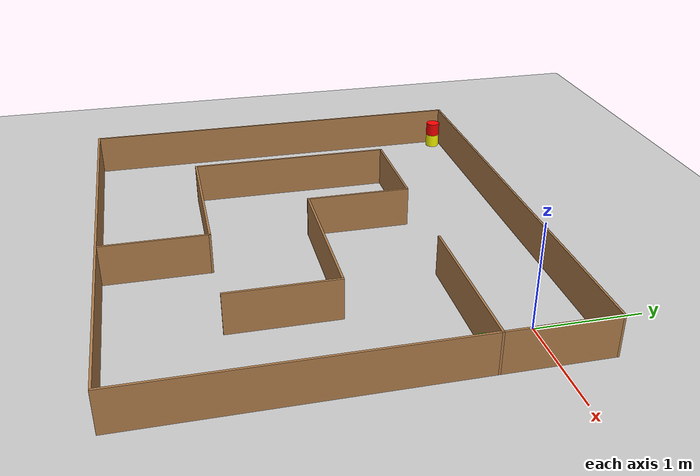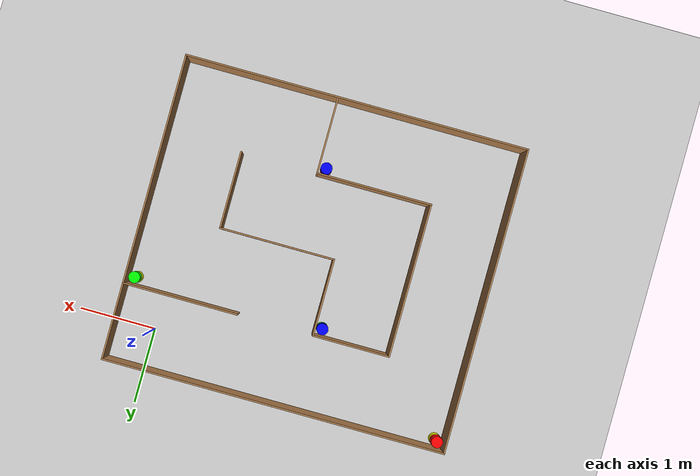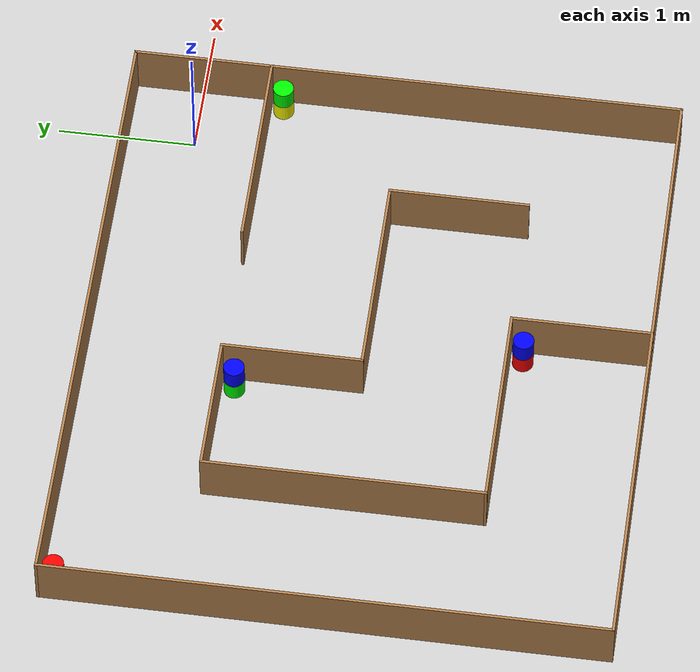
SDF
<?xml version="1.0"?>
<sdf version="1.6">
  <world name="default">

    <include>
      <uri>model://ground_plane</uri>
    </include>

    <include>
      <uri>model://sun</uri>
    </include>

    <scene>
      <shadows>false</shadows>
    </scene>

    <gui fullscreen='0'>
      <camera name='user_camera'>
        <view_controller>orbit</view_controller>
        <projection_type>perspective</projection_type>
      </camera>
    </gui>

    <physics type="ode">
      <real_time_update_rate>1000.0</real_time_update_rate>
      <max_step_size>0.001</max_step_size>
      <real_time_factor>1</real_time_factor>
      <ode>
        <solver>
          <type>quick</type>
          <iters>150</iters>
          <precon_iters>0</precon_iters>
          <sor>1.400000</sor>
          <use_dynamic_moi_rescaling>1</use_dynamic_moi_rescaling>
        </solver>
        <constraints>
          <cfm>0.00001</cfm>
          <erp>0.2</erp>
          <contact_max_correcting_vel>2000.000000</contact_max_correcting_vel>
          <contact_surface_layer>0.01000</contact_surface_layer>
        </constraints>
      </ode>
    </physics>

    <model name="maze_24">
      <static>1</static>
      <include>
        <uri>model://maze_24c</uri>
      </include>
    </model>

    <!-- Beacons -->
    <include>
      <uri>model://beacon_GB</uri>
        <pose>-2.1 -0.6 0 0 0 0</pose>
    </include>

    <include>
      <uri>model://beacon_YR</uri>
        <pose>-3.9 0.4 0 0 0 0</pose>
    </include>

    <include>
      <uri>model://beacon_YG</uri>
        <pose>0.4 -0.6 0 0 0 0</pose>
    </include>

    <include>
      <uri>model://beacon_RB</uri>
        <pose>-1.6 -2.6 0 0 0 0</pose>
    </include>

  </world>
</sdf>

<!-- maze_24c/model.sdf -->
<sdf version='1.7'>
  <model name='maze_24c'>
    <pose>-1.75 -1.5 0 0 -0 0</pose>
    <link name='Wall_0'>
      <collision name='Wall_0_Collision'>
        <geometry>
          <box>
            <size>4.52 0.02 0.4</size>
          </box>
        </geometry>
        <pose>0 0 0.2 0 -0 0</pose>
      </collision>
      <visual name='Wall_0_Visual'>
        <pose>0 0 0.2 0 -0 0</pose>
        <geometry>
          <box>
            <size>4.52 0.02 0.4</size>
          </box>
        </geometry>
        <material>
          <script>
            <uri>file://media/materials/scripts/gazebo.material</uri>
            <name>Gazebo/Wood</name>
          </script>
          <ambient>1 1 1 1</ambient>
        </material>
        <meta>
          <layer>0</layer>
        </meta>
      </visual>
      <pose>0 2 0 0 -0 3.14159</pose>
    </link>
    <link name='Wall_10'>
      <collision name='Wall_10_Collision'>
        <geometry>
          <box>
            <size>1.52 0.02 0.4</size>
          </box>
        </geometry>
        <pose>0 0 0.2 0 -0 0</pose>
      </collision>
      <visual name='Wall_10_Visual'>
        <pose>0 0 0.2 0 -0 0</pose>
        <geometry>
          <box>
            <size>1.52 0.02 0.4</size>
          </box>
        </geometry>
        <material>
          <script>
            <uri>file://media/materials/scripts/gazebo.material</uri>
            <name>Gazebo/Wood</name>
          </script>
          <ambient>1 1 1 1</ambient>
        </material>
        <meta>
          <layer>0</layer>
        </meta>
      </visual>
      <pose>-0.5 -1 0 0 -0 3.14159</pose>
    </link>
    <link name='Wall_12'>
      <collision name='Wall_12_Collision'>
        <geometry>
          <box>
            <size>2.02 0.02 0.4</size>
          </box>
        </geometry>
        <pose>0 0 0.2 0 -0 0</pose>
      </collision>
      <visual name='Wall_12_Visual'>
        <pose>0 0 0.2 0 -0 0</pose>
        <geometry>
          <box>
            <size>2.02 0.02 0.4</size>
          </box>
        </geometry>
        <material>
          <script>
            <uri>file://media/materials/scripts/gazebo.material</uri>
            <name>Gazebo/Wood</name>
          </script>
          <ambient>1 1 1 1</ambient>
        </material>
        <meta>
          <layer>0</layer>
        </meta>
      </visual>
      <pose>-1.25 0 0 0 -0 1.5708</pose>
    </link>
    <link name='Wall_14'>
      <collision name='Wall_14_Collision'>
        <geometry>
          <box>
            <size>1.02 0.02 0.4</size>
          </box>
        </geometry>
        <pose>0 0 0.2 0 -0 0</pose>
      </collision>
      <visual name='Wall_14_Visual'>
        <pose>0 0 0.2 0 -0 0</pose>
        <geometry>
          <box>
            <size>1.02 0.02 0.4</size>
          </box>
        </geometry>
        <material>
          <script>
            <uri>file://media/materials/scripts/gazebo.material</uri>
            <name>Gazebo/Wood</name>
          </script>
          <ambient>1 1 1 1</ambient>
        </material>
        <meta>
          <layer>0</layer>
        </meta>
      </visual>
      <pose>-0.75 1 0 0 -0 0</pose>
    </link>
    <link name='Wall_16'>
      <collision name='Wall_16_Collision'>
        <geometry>
          <box>
            <size>1.52 0.02 0.4</size>
          </box>
        </geometry>
        <pose>0 0 0.2 0 -0 0</pose>
      </collision>
      <visual name='Wall_16_Visual'>
        <pose>0 0 0.2 0 -0 0</pose>
        <geometry>
          <box>
            <size>1.52 0.02 0.4</size>
          </box>
        </geometry>
        <material>
          <script>
            <uri>file://media/materials/scripts/gazebo.material</uri>
            <name>Gazebo/Wood</name>
          </script>
          <ambient>1 1 1 1</ambient>
        </material>
        <meta>
          <layer>0</layer>
        </meta>
      </visual>
      <pose>1.5 1 0 0 -0 0</pose>
    </link>
    <link name='Wall_18'>
      <collision name='Wall_18_Collision'>
        <geometry>
          <box>
            <size>1.02 0.02 0.4</size>
          </box>
        </geometry>
        <pose>0 0 0.2 0 -0 0</pose>
      </collision>
      <visual name='Wall_18_Visual'>
        <pose>0 0 0.2 0 -0 0</pose>
        <geometry>
          <box>
            <size>1.02 0.02 0.4</size>
          </box>
        </geometry>
        <material>
          <script>
            <uri>file://media/materials/scripts/gazebo.material</uri>
            <name>Gazebo/Wood</name>
          </script>
          <ambient>1 1 1 1</ambient>
        </material>
        <meta>
          <layer>0</layer>
        </meta>
      </visual>
      <pose>-0.25 0.5 0 0 -0 -1.5708</pose>
    </link>
    <link name='Wall_2'>
      <collision name='Wall_2_Collision'>
        <geometry>
          <box>
            <size>4.02 0.02 0.4</size>
          </box>
        </geometry>
        <pose>0 0 0.2 0 -0 0</pose>
      </collision>
      <visual name='Wall_2_Visual'>
        <pose>0 0 0.2 0 -0 0</pose>
        <geometry>
          <box>
            <size>4.02 0.02 0.4</size>
          </box>
        </geometry>
        <material>
          <script>
            <uri>file://media/materials/scripts/gazebo.material</uri>
            <name>Gazebo/Wood</name>
          </script>
          <ambient>1 1 1 1</ambient>
        </material>
        <meta>
          <layer>0</layer>
        </meta>
      </visual>
      <pose>-2.25 0 0 0 -0 -1.5708</pose>
    </link>
    <link name='Wall_20'>
      <collision name='Wall_20_Collision'>
        <geometry>
          <box>
            <size>1.52 0.02 0.4</size>
          </box>
        </geometry>
        <pose>0 0 0.2 0 -0 0</pose>
      </collision>
      <visual name='Wall_20_Visual'>
        <pose>0 0 0.2 0 -0 0</pose>
        <geometry>
          <box>
            <size>1.52 0.02 0.4</size>
          </box>
        </geometry>
        <material>
          <script>
            <uri>file://media/materials/scripts/gazebo.material</uri>
            <name>Gazebo/Wood</name>
          </script>
          <ambient>1 1 1 1</ambient>
        </material>
        <meta>
          <layer>0</layer>
        </meta>
      </visual>
      <pose>0.5 0 0 0 -0 0</pose>
    </link>
    <link name='Wall_22'>
      <collision name='Wall_22_Collision'>
        <geometry>
          <box>
            <size>1.02 0.02 0.4</size>
          </box>
        </geometry>
        <pose>0 0 0.2 0 -0 0</pose>
      </collision>
      <visual name='Wall_22_Visual'>
        <pose>0 0 0.2 0 -0 0</pose>
        <geometry>
          <box>
            <size>1.02 0.02 0.4</size>
          </box>
        </geometry>
        <material>
          <script>
            <uri>file://media/materials/scripts/gazebo.material</uri>
            <name>Gazebo/Wood</name>
          </script>
          <ambient>1 1 1 1</ambient>
        </material>
        <meta>
          <layer>0</layer>
        </meta>
      </visual>
      <pose>1.25 -0.5 0 0 -0 -1.5708</pose>
    </link>
    <link name='Wall_4'>
      <collision name='Wall_4_Collision'>
        <geometry>
          <box>
            <size>4.52 0.02 0.4</size>
          </box>
        </geometry>
        <pose>0 0 0.2 0 -0 0</pose>
      </collision>
      <visual name='Wall_4_Visual'>
        <pose>0 0 0.2 0 -0 0</pose>
        <geometry>
          <box>
            <size>4.52 0.02 0.4</size>
          </box>
        </geometry>
        <material>
          <script>
            <uri>file://media/materials/scripts/gazebo.material</uri>
            <name>Gazebo/Wood</name>
          </script>
          <ambient>1 1 1 1</ambient>
        </material>
        <meta>
          <layer>0</layer>
        </meta>
      </visual>
      <pose>0 -2 0 0 -0 0</pose>
    </link>
    <link name='Wall_6'>
      <collision name='Wall_6_Collision'>
        <geometry>
          <box>
            <size>4.02 0.02 0.4</size>
          </box>
        </geometry>
        <pose>0 0 0.2 0 -0 0</pose>
      </collision>
      <visual name='Wall_6_Visual'>
        <pose>0 0 0.2 0 -0 0</pose>
        <geometry>
          <box>
            <size>4.02 0.02 0.4</size>
          </box>
        </geometry>
        <material>
          <script>
            <uri>file://media/materials/scripts/gazebo.material</uri>
            <name>Gazebo/Wood</name>
          </script>
          <ambient>1 1 1 1</ambient>
        </material>
        <meta>
          <layer>0</layer>
        </meta>
      </visual>
      <pose>2.25 0 0 0 -0 1.5708</pose>
    </link>
    <link name='Wall_8'>
      <collision name='Wall_8_Collision'>
        <geometry>
          <box>
            <size>1.02 0.02 0.4</size>
          </box>
        </geometry>
        <pose>0 0 0.2 0 -0 0</pose>
      </collision>
      <visual name='Wall_8_Visual'>
        <pose>0 0 0.2 0 -0 0</pose>
        <geometry>
          <box>
            <size>1.02 0.02 0.4</size>
          </box>
        </geometry>
        <material>
          <script>
            <uri>file://media/materials/scripts/gazebo.material</uri>
            <name>Gazebo/Wood</name>
          </script>
          <ambient>1 1 1 1</ambient>
        </material>
        <meta>
          <layer>0</layer>
        </meta>
      </visual>
      <pose>0.25 -1.5 0 0 -0 1.5708</pose>
    </link>
    <static>1</static>
  </model>
</sdf>

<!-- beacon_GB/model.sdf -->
<sdf version='1.4'>
  <model name="beacon_GB">
	<static>true</static>
          <link name='chassis_lower'>
            <pose>0 0 0.07 0 0 0</pose>

            <collision name='collision'>
              <geometry>
                <cylinder>
                  <radius>.075</radius>
		  <length>.140</length>
                </cylinder>
              </geometry>
            </collision>

            <visual name='visual'>
              <geometry>
                <cylinder>
                  <radius>.075</radius>
		  <length>.140</length>
                </cylinder>
              </geometry>
        	<material>
          	  <ambient>0 1 0 1</ambient>
          	  <diffuse>0 1 0 1</diffuse>
          	  <specular>0.1 0.1 0.1 1</specular>
         	  <emissive>0 0 0 0</emissive>
        	</material>
            </visual>
          </link>

          <link name='chassis_upper'>
            <pose>0 0 0.21 0 0 0</pose>

            <collision name='collision'>
              <geometry>
                <cylinder>
                  <radius>.075</radius>
		  <length>.140</length>
                </cylinder>
              </geometry>
            </collision>

            <visual name='visual'>
              <geometry>
                <cylinder>
                  <radius>.075</radius>
		  <length>.140</length>
                </cylinder>
              </geometry>
        	<material>
          	  <ambient>0 0 1 1</ambient>
          	  <diffuse>0 0 1 1</diffuse>
          	  <specular>0.1 0.1 0.1 1</specular>
         	  <emissive>0 0 0 0</emissive>
        	</material>
            </visual>
          </link>

  </model>
</sdf>

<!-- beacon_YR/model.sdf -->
<sdf version='1.4'>
  <model name="beacon_YR">
	<static>true</static>
          <link name='chassis_lower'>
            <pose>0 0 0.07 0 0 0</pose>

            <collision name='collision'>
              <geometry>
                <cylinder>
                  <radius>.075</radius>
		  <length>.140</length>
                </cylinder>
              </geometry>
            </collision>

            <visual name='visual'>
              <geometry>
                <cylinder>
                  <radius>.075</radius>
		  <length>.140</length>
                </cylinder>
              </geometry>
        	<material>
          	  <ambient>1 1 0 1</ambient>
          	  <diffuse>1 1 0 1</diffuse>
          	  <specular>0.1 0.1 0.1 1</specular>
         	  <emissive>0 0 0 0</emissive>
        	</material>
            </visual>
          </link>

          <link name='chassis_upper'>
            <pose>0 0 0.21 0 0 0</pose>

            <collision name='collision'>
              <geometry>
                <cylinder>
                  <radius>.075</radius>
		  <length>.140</length>
                </cylinder>
              </geometry>
            </collision>

            <visual name='visual'>
              <geometry>
                <cylinder>
                  <radius>.075</radius>
		  <length>.140</length>
                </cylinder>
              </geometry>
        	<material>
          	  <ambient>1 0 0 1</ambient>
          	  <diffuse>1 0 0 1</diffuse>
          	  <specular>0.1 0.1 0.1 1</specular>
         	  <emissive>0 0 0 0</emissive>
        	</material>
            </visual>
          </link>

  </model>
</sdf>

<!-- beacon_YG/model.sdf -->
<sdf version='1.4'>
  <model name="beacon_YG">
	<static>true</static>
          <link name='chassis_lower'>
            <pose>0 0 0.07 0 0 0</pose>

            <collision name='collision'>
              <geometry>
                <cylinder>
                  <radius>.075</radius>
		  <length>.140</length>
                </cylinder>
              </geometry>
            </collision>

            <visual name='visual'>
              <geometry>
                <cylinder>
                  <radius>.075</radius>
		  <length>.140</length>
                </cylinder>
              </geometry>
        	<material>
          	  <ambient>1 1 0 1</ambient>
          	  <diffuse>1 1 0 1</diffuse>
          	  <specular>0.1 0.1 0.1 1</specular>
         	  <emissive>0 0 0 0</emissive>
        	</material>
            </visual>
          </link>

          <link name='chassis_upper'>
            <pose>0 0 0.21 0 0 0</pose>

            <collision name='collision'>
              <geometry>
                <cylinder>
                  <radius>.075</radius>
		  <length>.140</length>
                </cylinder>
              </geometry>
            </collision>

            <visual name='visual'>
              <geometry>
                <cylinder>
                  <radius>.075</radius>
		  <length>.140</length>
                </cylinder>
              </geometry>
        	<material>
          	  <ambient>0 1 0 1</ambient>
          	  <diffuse>0 1 0 1</diffuse>
          	  <specular>0.1 0.1 0.1 1</specular>
         	  <emissive>0 0 0 0</emissive>
        	</material>
            </visual>
          </link>

  </model>
</sdf>

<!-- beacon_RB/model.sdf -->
<sdf version='1.4'>
  <model name="beacon_RB">
	<static>true</static>
          <link name='chassis_lower'>
            <pose>0 0 0.07 0 0 0</pose>

            <collision name='collision'>
              <geometry>
                <cylinder>
                  <radius>.075</radius>
		  <length>.140</length>
                </cylinder>
              </geometry>
            </collision>

            <visual name='visual'>
              <geometry>
                <cylinder>
                  <radius>.075</radius>
		  <length>.140</length>
                </cylinder>
              </geometry>
        	<material>
          	  <ambient>1 0 0 1</ambient>
          	  <diffuse>1 0 0 1</diffuse>
          	  <specular>0.1 0.1 0.1 1</specular>
         	  <emissive>0 0 0 0</emissive>
        	</material>
            </visual>
          </link>

          <link name='chassis_upper'>
            <pose>0 0 0.21 0 0 0</pose>

            <collision name='collision'>
              <geometry>
                <cylinder>
                  <radius>.075</radius>
		  <length>.140</length>
                </cylinder>
              </geometry>
            </collision>

            <visual name='visual'>
              <geometry>
                <cylinder>
                  <radius>.075</radius>
		  <length>.140</length>
                </cylinder>
              </geometry>
        	<material>
          	  <ambient>0 0 1 1</ambient>
          	  <diffuse>0 0 1 1</diffuse>
          	  <specular>0.1 0.1 0.1 1</specular>
         	  <emissive>0 0 0 0</emissive>
        	</material>
            </visual>
          </link>

  </model>
</sdf>
